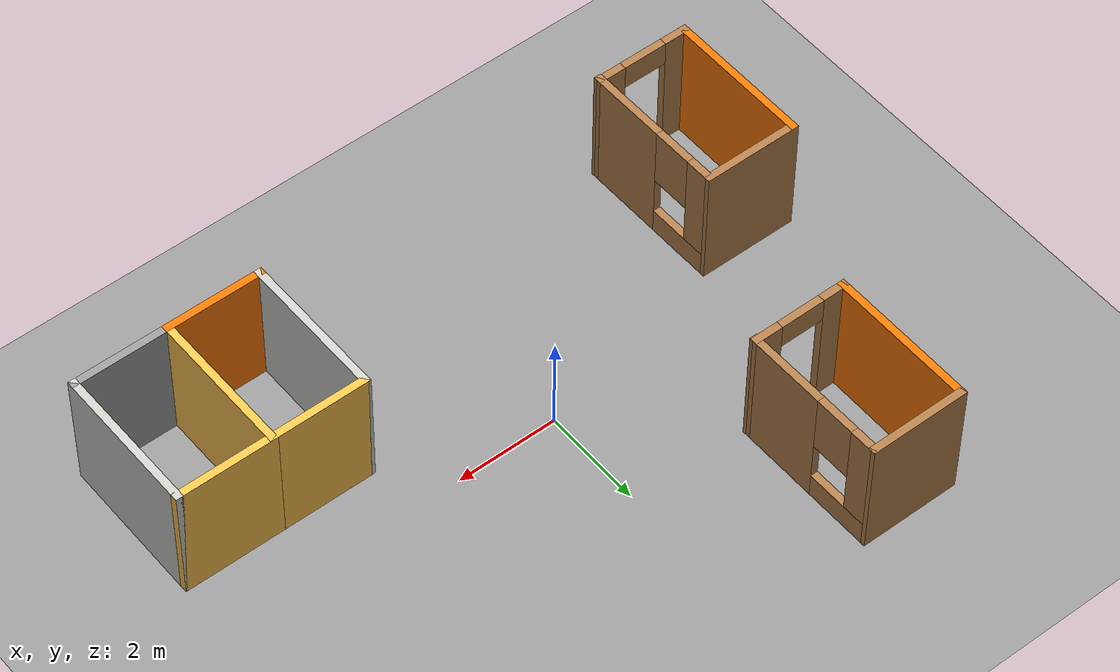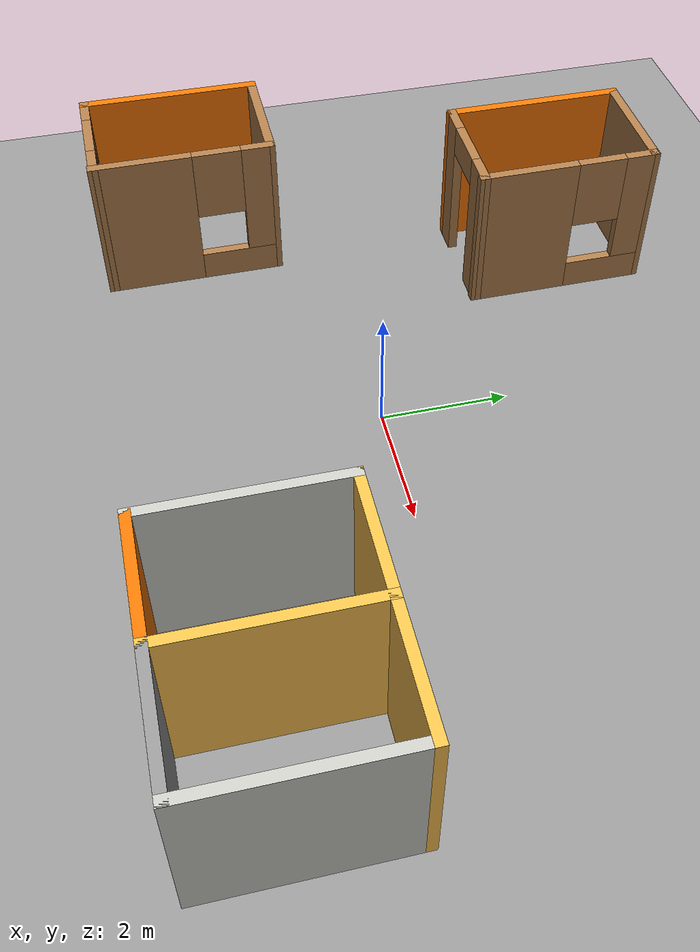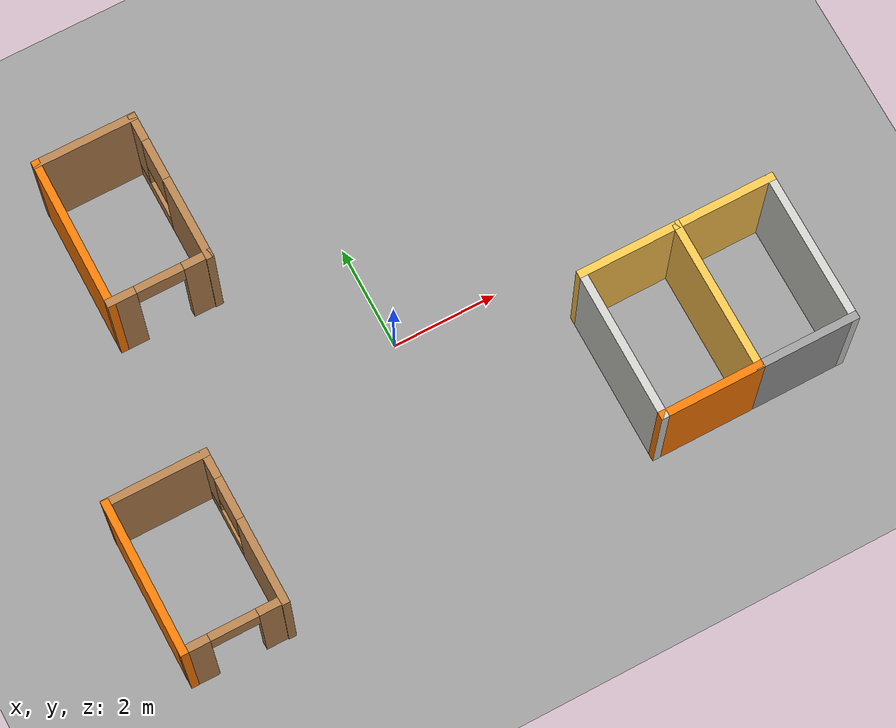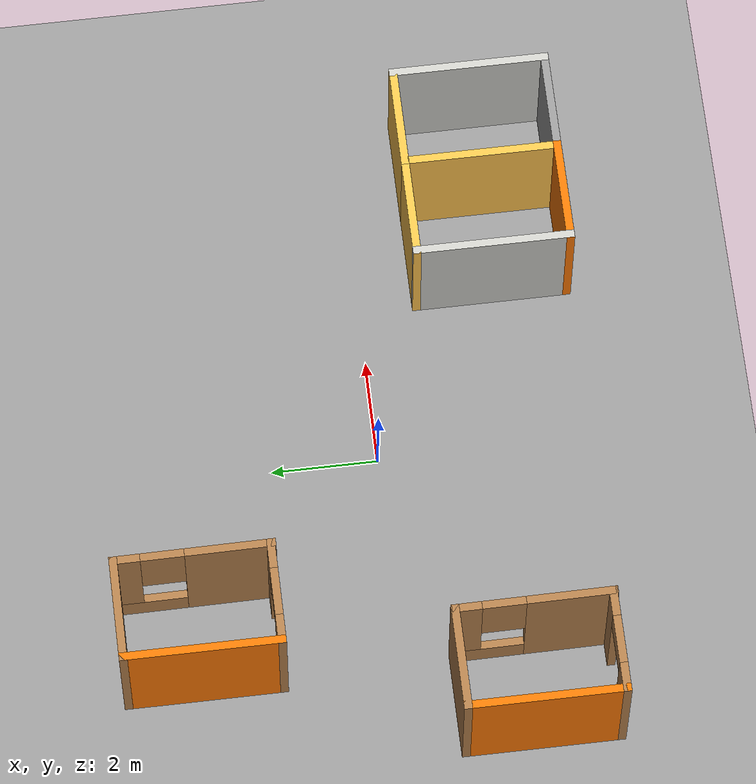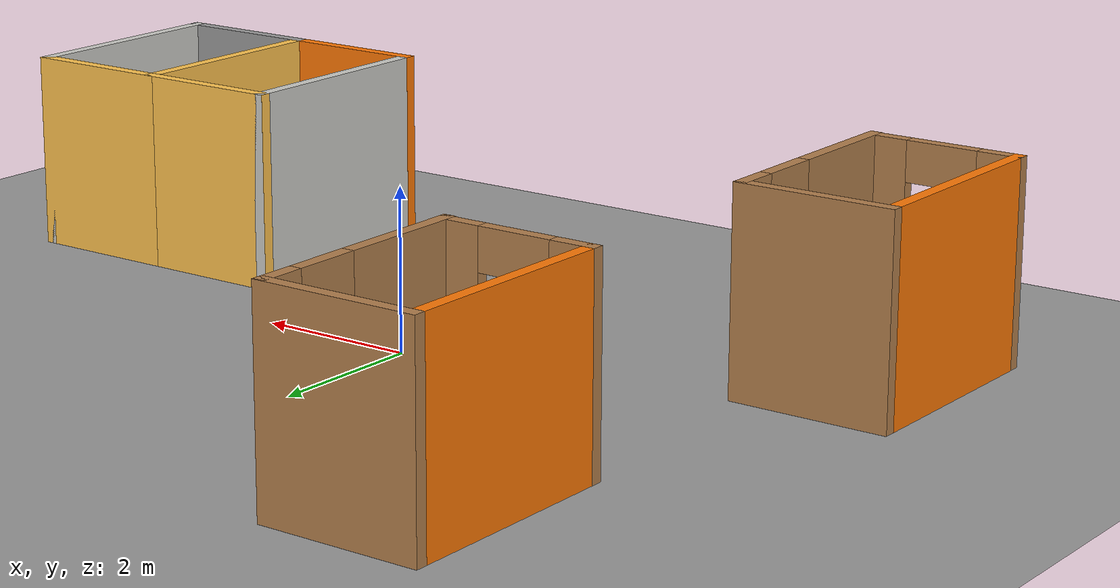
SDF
<sdf version="1.6">
 <world name="default">
  <light name="sun" type="directional">
   <pose>0 0 10 0 -0 0</pose>
   <diffuse>0.8 0.8 0.8 1</diffuse>
   <specular>0.2 0.2 0.2 1</specular>
   <attenuation>
    <range>1000</range>
    <constant>0.9</constant>
    <linear>0.01</linear>
    <quadratic>0.001</quadratic>
   </attenuation>
   <direction>0.5 0.1 -0.9</direction>
  </light>
  <scene><ambient>0.4 0.4 0.4 1</ambient><background>0.7 0.7 0.7 1</background><shadows>1</shadows></scene>
  <physics name="default_physics" default="0" type="ode">
   <max_step_size>0.01</max_step_size>
   <real_time_factor>1</real_time_factor>
   <real_time_update_rate>100</real_time_update_rate>
  </physics>
  <model name="ground_plane_0">
   <static>1</static>
   <link name="link">
    <collision name="collision">
     <geometry><plane><normal>0 0 1</normal><size>100 100</size></plane></geometry>
     <surface><friction><ode><mu>100</mu><mu2>50</mu2></ode></friction></surface>
    </collision>
    <visual name="visual">
     <cast_shadows>0</cast_shadows>
     <geometry><plane><normal>0 0 1</normal><size>100 100</size></plane></geometry>
     <material>
      <script><uri>file://media/materials/scripts/gazebo.material</uri><name>Gazebo/Grey</name></script>
     </material>
    </visual>
    <velocity_decay><linear>0</linear><angular>0</angular></velocity_decay>
   </link>
   <pose>0.497681 0 0 0 -0 0</pose>
  </model>
  <gravity>0 0 -9.8</gravity>
  <magnetic_field>6e-06 2.3e-05 -4.2e-05</magnetic_field>
  <atmosphere type="adiabatic"/>
  <spherical_coordinates>
   <surface_model>EARTH_WGS84</surface_model>
   <latitude_deg>0</latitude_deg>
   <longitude_deg>0</longitude_deg>
   <elevation>0</elevation>
   <heading_deg>0</heading_deg>
  </spherical_coordinates>
  <model name="room2">
   <pose>4.91698 -2.50339 0 0 -0 0</pose>
   <link name="Wall_10">
    <collision name="Wall_10_Collision">
     <geometry><box><size>3 0.15 2.5</size></box></geometry>
     <pose>0 0 1.25 0 -0 0</pose>
    </collision>
    <visual name="Wall_10_Visual">
     <pose>0 0 1.25 0 -0 0</pose>
     <geometry><box><size>3 0.15 2.5</size></box></geometry>
     <material>
      <script><uri>file://media/materials/scripts/gazebo.material</uri><name>Gazebo/CeilingTiled</name></script>
      <ambient>1 0.764706 0.305882 1</ambient>
     </material>
    </visual>
    <pose>-1.84994 -1.5e-05 0 0 -0 1.5708</pose>
   </link>
   <link name="Wall_11">
    <collision name="Wall_11_Collision">
     <geometry><box><size>2 0.15 2.5</size></box></geometry>
     <pose>0 0 1.25 0 -0 0</pose>
    </collision>
    <visual name="Wall_11_Visual">
     <pose>0 0 1.25 0 -0 0</pose>
     <geometry><box><size>2 0.15 2.5</size></box></geometry>
     <material>
      <script><uri>file://media/materials/scripts/gazebo.material</uri><name>Gazebo/Grey</name></script>
      <ambient>1 0.764706 0.305882 1</ambient>
     </material>
    </visual>
    <pose>-0.924979 1.425 0 0 -0 1.7e-05</pose>
   </link>
   <link name="Wall_5">
    <collision name="Wall_5_Collision">
     <geometry><box><size>2 0.15 2.5</size></box></geometry>
     <pose>0 0 1.25 0 -0 0</pose>
    </collision>
    <visual name="Wall_5_Visual">
     <pose>0 0 1.25 0 -0 0</pose>
     <geometry><box><size>2 0.15 2.5</size></box></geometry>
     <material>
      <script><uri>file://media/materials/scripts/gazebo.material</uri><name>Gazebo/Grey</name></script>
      <ambient>1 1 1 1</ambient>
     </material>
    </visual>
    <pose>0.92498 -1.42498 0 0 -0 0</pose>
   </link>
   <link name="Wall_6">
    <collision name="Wall_6_Collision">
     <geometry><box><size>3 0.15 2.5</size></box></geometry>
     <pose>0 0 1.25 0 -0 0</pose>
    </collision>
    <visual name="Wall_6_Visual">
     <pose>0 0 1.25 0 -0 0</pose>
     <geometry><box><size>3 0.15 2.5</size></box></geometry>
     <material>
      <script><uri>file://media/materials/scripts/gazebo.material</uri><name>Gazebo/CeilingTiled</name></script>
      <ambient>1 1 1 1</ambient>
     </material>
    </visual>
    <pose>1.84998 1.6e-05 0 0 -0 1.5708</pose>
   </link>
   <link name="Wall_7">
    <collision name="Wall_7_Collision">
     <geometry><box><size>2 0.15 2.5</size></box></geometry>
     <pose>0 0 1.25 0 -0 0</pose>
    </collision>
    <visual name="Wall_7_Visual">
     <pose>0 0 1.25 0 -0 0</pose>
     <geometry><box><size>2 0.15 2.5</size></box></geometry>
     <material>
      <script><uri>file://media/materials/scripts/gazebo.material</uri><name>Gazebo/Grey</name></script>
      <ambient>1 0.764706 0.305882 1</ambient>
     </material>
    </visual>
    <pose>0.92498 1.42502 0 0 -0 3.14159</pose>
   </link>
   <link name="Wall_8">
    <collision name="Wall_8_Collision">
     <geometry><box><size>3 0.15 2.5</size></box></geometry>
     <pose>0 0 1.25 0 -0 0</pose>
    </collision>
    <visual name="Wall_8_Visual">
     <pose>0 0 1.25 0 -0 0</pose>
     <geometry><box><size>3 0.15 2.5</size></box></geometry>
     <material>
      <script><uri>file://media/materials/scripts/gazebo.material</uri><name>Gazebo/Grey</name></script>
      <ambient>1 0.764706 0.305882 1</ambient>
     </material>
    </visual>
    <pose>-2e-05 1.6e-05 0 0 0 -1.5708</pose>
   </link>
   <link name="Wall_9">
    <collision name="Wall_9_Collision">
     <geometry><box><size>2 0.15 2.5</size></box></geometry>
     <pose>0 0 1.25 0 -0 0</pose>
    </collision>
    <visual name="Wall_9_Visual">
     <pose>0 0 1.25 0 -0 0</pose>
     <geometry><box><size>2 0.15 2.5</size></box></geometry>
     <material>
      <script><uri>file://media/materials/scripts/gazebo.material</uri><name>Gazebo/Grey</name></script>
      <ambient>0.996078 0.47451 0.0196078 1</ambient>
     </material>
    </visual>
    <pose>-0.924979 -1.425 0 0 0 -3.14158</pose>
   </link>
   <static>1</static>
  </model>
  <model name="room1_0">
   <link name="Wall_0">
    <pose>-0.934 0.009007 0 0 0 -1.5708</pose>
    <visual name="Wall_0_Visual">
     <pose>0 0 1.25 0 -0 0</pose>
     <geometry><box><size>3 0.15 2.5</size></box></geometry>
     <material>
      <script><uri>file://media/materials/scripts/gazebo.material</uri><name>Gazebo/Grey</name></script>
      <ambient>0.996078 0.47451 0.0196078 1</ambient>
      <diffuse>0.7 0.7 0.7 1</diffuse>
      <specular>0.01 0.01 0.01 1</specular>
      <emissive>0 0 0 1</emissive>
     </material>
    </visual>
    <collision name="Wall_0_Collision">
     <pose>0 0 1.25 0 -0 0</pose>
     <geometry><box><size>3 0.15 2.5</size></box></geometry>
     <surface>
      <friction>
       <ode><mu>1</mu><mu2>1</mu2><fdir1>0 0 0</fdir1><slip1>0</slip1><slip2>0</slip2></ode>
       <torsional>
        <coefficient>1</coefficient>
        <patch_radius>0</patch_radius>
        <surface_radius>0</surface_radius>
        <use_patch_radius>1</use_patch_radius>
        <ode><slip>0</slip></ode>
       </torsional>
      </friction>
      <bounce><restitution_coefficient>0</restitution_coefficient><threshold>1e+06</threshold></bounce>
      <contact>
       <collide_without_contact>0</collide_without_contact>
       <collide_without_contact_bitmask>1</collide_without_contact_bitmask>
       <collide_bitmask>1</collide_bitmask>
       <ode>
        <soft_cfm>0</soft_cfm>
        <soft_erp>0.2</soft_erp>
        <kp>1e+13</kp>
        <kd>1</kd>
        <max_vel>0.01</max_vel>
        <min_depth>0</min_depth>
       </ode>
       <bullet>
        <split_impulse>1</split_impulse>
        <split_impulse_penetration_threshold>-0.01</split_impulse_penetration_threshold>
        <soft_cfm>0</soft_cfm>
        <soft_erp>0.2</soft_erp>
        <kp>1e+13</kp>
        <kd>1</kd>
       </bullet>
      </contact>
     </surface>
    </collision>
   </link>
   <link name="Wall_1">
    <pose>-0.000256 -1.41599 0 0 -0 0</pose>
    <visual name="Wall_1_Visual_0">
     <pose>-0.731978 0 1.25 0 -0 0</pose>
     <geometry><box><size>0.553561 0.15 2.5</size></box></geometry>
     <material>
      <script><uri>file://media/materials/scripts/gazebo.material</uri><name>Gazebo/Wood</name></script>
      <ambient>0.921569 0.807843 0.615686 1</ambient>
      <diffuse>1 1 1 1</diffuse>
      <specular>0.2 0.2 0.2 1</specular>
      <emissive>0 0 0 1</emissive>
     </material>
    </visual>
    <visual name="Wall_1_Visual_1">
     <pose>0.726781 0 1.25 0 -0 0</pose>
     <geometry><box><size>0.563955 0.15 2.5</size></box></geometry>
     <material>
      <script><uri>file://media/materials/scripts/gazebo.material</uri><name>Gazebo/Wood</name></script>
      <ambient>0.921569 0.807843 0.615686 1</ambient>
      <diffuse>1 1 1 1</diffuse>
      <specular>0.2 0.2 0.2 1</specular>
      <emissive>0 0 0 1</emissive>
     </material>
    </visual>
    <visual name="Wall_1_Visual_2">
     <pose>-0.005197 0 2.25 0 -0 0</pose>
     <geometry><box><size>0.9 0.15 0.5</size></box></geometry>
     <material>
      <script><uri>file://media/materials/scripts/gazebo.material</uri><name>Gazebo/Wood</name></script>
      <ambient>0.921569 0.807843 0.615686 1</ambient>
      <diffuse>1 1 1 1</diffuse>
      <specular>0.2 0.2 0.2 1</specular>
      <emissive>0 0 0 1</emissive>
     </material>
    </visual>
    <collision name="Wall_1_Collision_0">
     <pose>-0.731978 0 1.25 0 -0 0</pose>
     <geometry><box><size>0.553561 0.15 2.5</size></box></geometry>
     <surface>
      <friction>
       <ode><mu>1</mu><mu2>1</mu2><fdir1>0 0 0</fdir1><slip1>0</slip1><slip2>0</slip2></ode>
       <torsional>
        <coefficient>1</coefficient>
        <patch_radius>0</patch_radius>
        <surface_radius>0</surface_radius>
        <use_patch_radius>1</use_patch_radius>
        <ode><slip>0</slip></ode>
       </torsional>
      </friction>
      <bounce><restitution_coefficient>0</restitution_coefficient><threshold>1e+06</threshold></bounce>
      <contact>
       <collide_without_contact>0</collide_without_contact>
       <collide_without_contact_bitmask>1</collide_without_contact_bitmask>
       <collide_bitmask>1</collide_bitmask>
       <ode>
        <soft_cfm>0</soft_cfm>
        <soft_erp>0.2</soft_erp>
        <kp>1e+13</kp>
        <kd>1</kd>
        <max_vel>0.01</max_vel>
        <min_depth>0</min_depth>
       </ode>
       <bullet>
        <split_impulse>1</split_impulse>
        <split_impulse_penetration_threshold>-0.01</split_impulse_penetration_threshold>
        <soft_cfm>0</soft_cfm>
        <soft_erp>0.2</soft_erp>
        <kp>1e+13</kp>
        <kd>1</kd>
       </bullet>
      </contact>
     </surface>
    </collision>
    <collision name="Wall_1_Collision_1">
     <pose>0.726781 0 1.25 0 -0 0</pose>
     <geometry><box><size>0.563955 0.15 2.5</size></box></geometry>
     <surface>
      <friction>
       <ode><mu>1</mu><mu2>1</mu2><fdir1>0 0 0</fdir1><slip1>0</slip1><slip2>0</slip2></ode>
       <torsional>
        <coefficient>1</coefficient>
        <patch_radius>0</patch_radius>
        <surface_radius>0</surface_radius>
        <use_patch_radius>1</use_patch_radius>
        <ode><slip>0</slip></ode>
       </torsional>
      </friction>
      <bounce><restitution_coefficient>0</restitution_coefficient><threshold>1e+06</threshold></bounce>
      <contact>
       <collide_without_contact>0</collide_without_contact>
       <collide_without_contact_bitmask>1</collide_without_contact_bitmask>
       <collide_bitmask>1</collide_bitmask>
       <ode>
        <soft_cfm>0</soft_cfm>
        <soft_erp>0.2</soft_erp>
        <kp>1e+13</kp>
        <kd>1</kd>
        <max_vel>0.01</max_vel>
        <min_depth>0</min_depth>
       </ode>
       <bullet>
        <split_impulse>1</split_impulse>
        <split_impulse_penetration_threshold>-0.01</split_impulse_penetration_threshold>
        <soft_cfm>0</soft_cfm>
        <soft_erp>0.2</soft_erp>
        <kp>1e+13</kp>
        <kd>1</kd>
       </bullet>
      </contact>
     </surface>
    </collision>
    <collision name="Wall_1_Collision_2">
     <pose>-0.005197 0 2.25 0 -0 0</pose>
     <geometry><box><size>0.9 0.15 0.5</size></box></geometry>
     <surface>
      <friction>
       <ode><mu>1</mu><mu2>1</mu2><fdir1>0 0 0</fdir1><slip1>0</slip1><slip2>0</slip2></ode>
       <torsional>
        <coefficient>1</coefficient>
        <patch_radius>0</patch_radius>
        <surface_radius>0</surface_radius>
        <use_patch_radius>1</use_patch_radius>
        <ode><slip>0</slip></ode>
       </torsional>
      </friction>
      <bounce><restitution_coefficient>0</restitution_coefficient><threshold>1e+06</threshold></bounce>
      <contact>
       <collide_without_contact>0</collide_without_contact>
       <collide_without_contact_bitmask>1</collide_without_contact_bitmask>
       <collide_bitmask>1</collide_bitmask>
       <ode>
        <soft_cfm>0</soft_cfm>
        <soft_erp>0.2</soft_erp>
        <kp>1e+13</kp>
        <kd>1</kd>
        <max_vel>0.01</max_vel>
        <min_depth>0</min_depth>
       </ode>
       <bullet>
        <split_impulse>1</split_impulse>
        <split_impulse_penetration_threshold>-0.01</split_impulse_penetration_threshold>
        <soft_cfm>0</soft_cfm>
        <soft_erp>0.2</soft_erp>
        <kp>1e+13</kp>
        <kd>1</kd>
       </bullet>
      </contact>
     </surface>
    </collision>
   </link>
   <link name="Wall_2">
    <pose>0.92349 -0.008483 0 0 -0 1.57781</pose>
    <inertial>
     <mass>1</mass>
     <inertia><ixx>1</ixx><ixy>0</ixy><ixz>0</ixz><iyy>1</iyy><iyz>0</iyz><izz>1</izz></inertia>
    </inertial>
    <visual name="Wall_2_Visual_0">
     <pose>-0.671271 0 1.25 0 -0 0</pose>
     <geometry><box><size>1.65753 0.15 2.5</size></box></geometry>
     <material>
      <script><uri>file://media/materials/scripts/gazebo.material</uri><name>Gazebo/Wood</name></script>
      <ambient>0.435 0.796 0.675 1</ambient>
      <diffuse>1 1 1 1</diffuse>
      <specular>0.2 0.2 0.2 1</specular>
      <emissive>1 0.3 0 1</emissive>
      <shader type="vertex"><normal_map>__default__</normal_map></shader>
     </material>
    </visual>
    <visual name="Wall_2_Visual_1">
     <pose>0.828764 0 0.25 0 -0 0</pose>
     <geometry><box><size>1.34254 0.15 0.5</size></box></geometry>
     <material>
      <script><uri>file://media/materials/scripts/gazebo.material</uri><name>Gazebo/Wood</name></script>
      <ambient>0.435 0.796 0.675 1</ambient>
      <diffuse>1 1 1 1</diffuse>
      <specular>0.2 0.2 0.2 1</specular>
      <emissive>0 0 0 1</emissive>
      <shader type="vertex"><normal_map>__default__</normal_map></shader>
     </material>
    </visual>
    <visual name="Wall_2_Visual_2">
     <pose>1.22876 0 1.5 0 -0 0</pose>
     <geometry><box><size>0.542542 0.15 2</size></box></geometry>
     <material>
      <script><uri>file://media/materials/scripts/gazebo.material</uri><name>Gazebo/Wood</name></script>
      <ambient>0.435 0.796 0.675 1</ambient>
      <diffuse>1 1 1 1</diffuse>
      <specular>0.2 0.2 0.2 1</specular>
      <emissive>0 0 0 1</emissive>
      <shader type="vertex"><normal_map>__default__</normal_map></shader>
     </material>
    </visual>
    <visual name="Wall_2_Visual_3">
     <pose>0.557493 0 1.9 0 -0 0</pose>
     <geometry><box><size>0.8 0.15 1.2</size></box></geometry>
     <material>
      <script><uri>file://media/materials/scripts/gazebo.material</uri><name>Gazebo/Wood</name></script>
      <ambient>0.435 0.796 0.675 1</ambient>
      <diffuse>1 1 1 1</diffuse>
      <specular>0.2 0.2 0.2 1</specular>
      <emissive>0 0 0 1</emissive>
      <shader type="vertex"><normal_map>__default__</normal_map></shader>
     </material>
    </visual>
    <collision name="Wall_2_Collision_0">
     <pose>-0.671271 0 1.25 0 -0 0</pose>
     <geometry><box><size>1.65753 0.15 2.5</size></box></geometry>
     <surface>
      <friction>
       <ode><mu>1</mu><mu2>1</mu2><fdir1>0 0 0</fdir1><slip1>0</slip1><slip2>0</slip2></ode>
       <torsional>
        <coefficient>1</coefficient>
        <patch_radius>0</patch_radius>
        <surface_radius>0</surface_radius>
        <use_patch_radius>1</use_patch_radius>
        <ode><slip>0</slip></ode>
       </torsional>
      </friction>
      <bounce><restitution_coefficient>0</restitution_coefficient><threshold>1e+06</threshold></bounce>
      <contact>
       <collide_without_contact>0</collide_without_contact>
       <collide_without_contact_bitmask>1</collide_without_contact_bitmask>
       <collide_bitmask>1</collide_bitmask>
       <ode>
        <soft_cfm>0</soft_cfm>
        <soft_erp>0.2</soft_erp>
        <kp>1e+13</kp>
        <kd>1</kd>
        <max_vel>0.01</max_vel>
        <min_depth>0</min_depth>
       </ode>
       <bullet>
        <split_impulse>1</split_impulse>
        <split_impulse_penetration_threshold>-0.01</split_impulse_penetration_threshold>
        <soft_cfm>0</soft_cfm>
        <soft_erp>0.2</soft_erp>
        <kp>1e+13</kp>
        <kd>1</kd>
       </bullet>
      </contact>
     </surface>
    </collision>
    <collision name="Wall_2_Collision_1">
     <pose>0.828764 0 0.25 0 -0 0</pose>
     <geometry><box><size>1.34254 0.15 0.5</size></box></geometry>
     <surface>
      <friction>
       <ode><mu>1</mu><mu2>1</mu2><fdir1>0 0 0</fdir1><slip1>0</slip1><slip2>0</slip2></ode>
       <torsional>
        <coefficient>1</coefficient>
        <patch_radius>0</patch_radius>
        <surface_radius>0</surface_radius>
        <use_patch_radius>1</use_patch_radius>
        <ode><slip>0</slip></ode>
       </torsional>
      </friction>
      <bounce><restitution_coefficient>0</restitution_coefficient><threshold>1e+06</threshold></bounce>
      <contact>
       <collide_without_contact>0</collide_without_contact>
       <collide_without_contact_bitmask>1</collide_without_contact_bitmask>
       <collide_bitmask>1</collide_bitmask>
       <ode>
        <soft_cfm>0</soft_cfm>
        <soft_erp>0.2</soft_erp>
        <kp>1e+13</kp>
        <kd>1</kd>
        <max_vel>0.01</max_vel>
        <min_depth>0</min_depth>
       </ode>
       <bullet>
        <split_impulse>1</split_impulse>
        <split_impulse_penetration_threshold>-0.01</split_impulse_penetration_threshold>
        <soft_cfm>0</soft_cfm>
        <soft_erp>0.2</soft_erp>
        <kp>1e+13</kp>
        <kd>1</kd>
       </bullet>
      </contact>
     </surface>
    </collision>
    <collision name="Wall_2_Collision_2">
     <pose>1.22876 0 1.5 0 -0 0</pose>
     <geometry><box><size>0.542542 0.15 2</size></box></geometry>
     <surface>
      <friction>
       <ode><mu>1</mu><mu2>1</mu2><fdir1>0 0 0</fdir1><slip1>0</slip1><slip2>0</slip2></ode>
       <torsional>
        <coefficient>1</coefficient>
        <patch_radius>0</patch_radius>
        <surface_radius>0</surface_radius>
        <use_patch_radius>1</use_patch_radius>
        <ode><slip>0</slip></ode>
       </torsional>
      </friction>
      <bounce><restitution_coefficient>0</restitution_coefficient><threshold>1e+06</threshold></bounce>
      <contact>
       <collide_without_contact>0</collide_without_contact>
       <collide_without_contact_bitmask>1</collide_without_contact_bitmask>
       <collide_bitmask>1</collide_bitmask>
       <ode>
        <soft_cfm>0</soft_cfm>
        <soft_erp>0.2</soft_erp>
        <kp>1e+13</kp>
        <kd>1</kd>
        <max_vel>0.01</max_vel>
        <min_depth>0</min_depth>
       </ode>
       <bullet>
        <split_impulse>1</split_impulse>
        <split_impulse_penetration_threshold>-0.01</split_impulse_penetration_threshold>
        <soft_cfm>0</soft_cfm>
        <soft_erp>0.2</soft_erp>
        <kp>1e+13</kp>
        <kd>1</kd>
       </bullet>
      </contact>
     </surface>
    </collision>
    <collision name="Wall_2_Collision_3">
     <pose>0.557493 0 1.9 0 -0 0</pose>
     <geometry><box><size>0.8 0.15 1.2</size></box></geometry>
     <surface>
      <friction>
       <ode><mu>1</mu><mu2>1</mu2><fdir1>0 0 0</fdir1><slip1>0</slip1><slip2>0</slip2></ode>
       <torsional>
        <coefficient>1</coefficient>
        <patch_radius>0</patch_radius>
        <surface_radius>0</surface_radius>
        <use_patch_radius>1</use_patch_radius>
        <ode><slip>0</slip></ode>
       </torsional>
      </friction>
      <bounce><restitution_coefficient>0</restitution_coefficient><threshold>1e+06</threshold></bounce>
      <contact>
       <collide_without_contact>0</collide_without_contact>
       <collide_without_contact_bitmask>1</collide_without_contact_bitmask>
       <collide_bitmask>1</collide_bitmask>
       <ode>
        <soft_cfm>0</soft_cfm>
        <soft_erp>0.2</soft_erp>
        <kp>1e+13</kp>
        <kd>1</kd>
        <max_vel>0.01</max_vel>
        <min_depth>0</min_depth>
       </ode>
       <bullet>
        <split_impulse>1</split_impulse>
        <split_impulse_penetration_threshold>-0.01</split_impulse_penetration_threshold>
        <soft_cfm>0</soft_cfm>
        <soft_erp>0.2</soft_erp>
        <kp>1e+13</kp>
        <kd>1</kd>
       </bullet>
      </contact>
     </surface>
    </collision>
   </link>
   <link name="Wall_3">
    <pose>-0.010256 1.43401 0 0 -0 3.14159</pose>
    <visual name="Wall_3_Visual">
     <pose>0 0 1.25 0 -0 0</pose>
     <geometry><box><size>1.99749 0.15 2.5</size></box></geometry>
     <material>
      <script><uri>file://media/materials/scripts/gazebo.material</uri><name>Gazebo/Wood</name></script>
      <ambient>0.996078 0.47451 0.0196078 1</ambient>
      <diffuse>1 1 1 1</diffuse>
      <specular>0.2 0.2 0.2 1</specular>
      <emissive>0 0 0 1</emissive>
     </material>
    </visual>
    <collision name="Wall_3_Collision">
     <pose>0 0 1.25 0 -0 0</pose>
     <geometry><box><size>1.99749 0.15 2.5</size></box></geometry>
     <surface>
      <friction>
       <ode><mu>1</mu><mu2>1</mu2><fdir1>0 0 0</fdir1><slip1>0</slip1><slip2>0</slip2></ode>
       <torsional>
        <coefficient>1</coefficient>
        <patch_radius>0</patch_radius>
        <surface_radius>0</surface_radius>
        <use_patch_radius>1</use_patch_radius>
        <ode><slip>0</slip></ode>
       </torsional>
      </friction>
      <bounce><restitution_coefficient>0</restitution_coefficient><threshold>1e+06</threshold></bounce>
      <contact>
       <collide_without_contact>0</collide_without_contact>
       <collide_without_contact_bitmask>1</collide_without_contact_bitmask>
       <collide_bitmask>1</collide_bitmask>
       <ode>
        <soft_cfm>0</soft_cfm>
        <soft_erp>0.2</soft_erp>
        <kp>1e+13</kp>
        <kd>1</kd>
        <max_vel>0.01</max_vel>
        <min_depth>0</min_depth>
       </ode>
       <bullet>
        <split_impulse>1</split_impulse>
        <split_impulse_penetration_threshold>-0.01</split_impulse_penetration_threshold>
        <soft_cfm>0</soft_cfm>
        <soft_erp>0.2</soft_erp>
        <kp>1e+13</kp>
        <kd>1</kd>
       </bullet>
      </contact>
     </surface>
    </collision>
   </link>
   <static>1</static>
   <pose>-4.956 -2.33401 0 0 -0 0</pose>
  </model>
  <model name="room1_0_clone">
   <link name="Wall_0">
    <pose>-0.934 0.009007 0 0 0 -1.5708</pose>
    <visual name="Wall_0_Visual">
     <pose>0 0 1.25 0 -0 0</pose>
     <geometry><box><size>3 0.15 2.5</size></box></geometry>
     <material>
      <script><uri>file://media/materials/scripts/gazebo.material</uri><name>Gazebo/Grey</name></script>
      <ambient>0.996078 0.47451 0.0196078 1</ambient>
      <diffuse>0.7 0.7 0.7 1</diffuse>
      <specular>0.01 0.01 0.01 1</specular>
      <emissive>0 0 0 1</emissive>
     </material>
    </visual>
    <collision name="Wall_0_Collision">
     <pose>0 0 1.25 0 -0 0</pose>
     <geometry><box><size>3 0.15 2.5</size></box></geometry>
     <surface>
      <friction>
       <ode><mu>1</mu><mu2>1</mu2><fdir1>0 0 0</fdir1><slip1>0</slip1><slip2>0</slip2></ode>
       <torsional>
        <coefficient>1</coefficient>
        <patch_radius>0</patch_radius>
        <surface_radius>0</surface_radius>
        <use_patch_radius>1</use_patch_radius>
        <ode><slip>0</slip></ode>
       </torsional>
      </friction>
      <bounce><restitution_coefficient>0</restitution_coefficient><threshold>1e+06</threshold></bounce>
      <contact>
       <collide_without_contact>0</collide_without_contact>
       <collide_without_contact_bitmask>1</collide_without_contact_bitmask>
       <collide_bitmask>1</collide_bitmask>
       <ode>
        <soft_cfm>0</soft_cfm>
        <soft_erp>0.2</soft_erp>
        <kp>1e+13</kp>
        <kd>1</kd>
        <max_vel>0.01</max_vel>
        <min_depth>0</min_depth>
       </ode>
       <bullet>
        <split_impulse>1</split_impulse>
        <split_impulse_penetration_threshold>-0.01</split_impulse_penetration_threshold>
        <soft_cfm>0</soft_cfm>
        <soft_erp>0.2</soft_erp>
        <kp>1e+13</kp>
        <kd>1</kd>
       </bullet>
      </contact>
     </surface>
    </collision>
   </link>
   <link name="Wall_1">
    <pose>-0.000256 -1.41599 0 0 -0 0</pose>
    <visual name="Wall_1_Visual_0">
     <pose>-0.731978 0 1.25 0 -0 0</pose>
     <geometry><box><size>0.553561 0.15 2.5</size></box></geometry>
     <material>
      <script><uri>file://media/materials/scripts/gazebo.material</uri><name>Gazebo/Wood</name></script>
      <ambient>0.921569 0.807843 0.615686 1</ambient>
      <diffuse>1 1 1 1</diffuse>
      <specular>0.2 0.2 0.2 1</specular>
      <emissive>0 0 0 1</emissive>
     </material>
    </visual>
    <visual name="Wall_1_Visual_1">
     <pose>0.726781 0 1.25 0 -0 0</pose>
     <geometry><box><size>0.563955 0.15 2.5</size></box></geometry>
     <material>
      <script><uri>file://media/materials/scripts/gazebo.material</uri><name>Gazebo/Wood</name></script>
      <ambient>0.921569 0.807843 0.615686 1</ambient>
      <diffuse>1 1 1 1</diffuse>
      <specular>0.2 0.2 0.2 1</specular>
      <emissive>0 0 0 1</emissive>
     </material>
    </visual>
    <visual name="Wall_1_Visual_2">
     <pose>-0.005197 0 2.25 0 -0 0</pose>
     <geometry><box><size>0.9 0.15 0.5</size></box></geometry>
     <material>
      <script><uri>file://media/materials/scripts/gazebo.material</uri><name>Gazebo/Wood</name></script>
      <ambient>0.921569 0.807843 0.615686 1</ambient>
      <diffuse>1 1 1 1</diffuse>
      <specular>0.2 0.2 0.2 1</specular>
      <emissive>0 0 0 1</emissive>
     </material>
    </visual>
    <collision name="Wall_1_Collision_0">
     <pose>-0.731978 0 1.25 0 -0 0</pose>
     <geometry><box><size>0.553561 0.15 2.5</size></box></geometry>
     <surface>
      <friction>
       <ode><mu>1</mu><mu2>1</mu2><fdir1>0 0 0</fdir1><slip1>0</slip1><slip2>0</slip2></ode>
       <torsional>
        <coefficient>1</coefficient>
        <patch_radius>0</patch_radius>
        <surface_radius>0</surface_radius>
        <use_patch_radius>1</use_patch_radius>
        <ode><slip>0</slip></ode>
       </torsional>
      </friction>
      <bounce><restitution_coefficient>0</restitution_coefficient><threshold>1e+06</threshold></bounce>
      <contact>
       <collide_without_contact>0</collide_without_contact>
       <collide_without_contact_bitmask>1</collide_without_contact_bitmask>
       <collide_bitmask>1</collide_bitmask>
       <ode>
        <soft_cfm>0</soft_cfm>
        <soft_erp>0.2</soft_erp>
        <kp>1e+13</kp>
        <kd>1</kd>
        <max_vel>0.01</max_vel>
        <min_depth>0</min_depth>
       </ode>
       <bullet>
        <split_impulse>1</split_impulse>
        <split_impulse_penetration_threshold>-0.01</split_impulse_penetration_threshold>
        <soft_cfm>0</soft_cfm>
        <soft_erp>0.2</soft_erp>
        <kp>1e+13</kp>
        <kd>1</kd>
       </bullet>
      </contact>
     </surface>
    </collision>
    <collision name="Wall_1_Collision_1">
     <pose>0.726781 0 1.25 0 -0 0</pose>
     <geometry><box><size>0.563955 0.15 2.5</size></box></geometry>
     <surface>
      <friction>
       <ode><mu>1</mu><mu2>1</mu2><fdir1>0 0 0</fdir1><slip1>0</slip1><slip2>0</slip2></ode>
       <torsional>
        <coefficient>1</coefficient>
        <patch_radius>0</patch_radius>
        <surface_radius>0</surface_radius>
        <use_patch_radius>1</use_patch_radius>
        <ode><slip>0</slip></ode>
       </torsional>
      </friction>
      <bounce><restitution_coefficient>0</restitution_coefficient><threshold>1e+06</threshold></bounce>
      <contact>
       <collide_without_contact>0</collide_without_contact>
       <collide_without_contact_bitmask>1</collide_without_contact_bitmask>
       <collide_bitmask>1</collide_bitmask>
       <ode>
        <soft_cfm>0</soft_cfm>
        <soft_erp>0.2</soft_erp>
        <kp>1e+13</kp>
        <kd>1</kd>
        <max_vel>0.01</max_vel>
        <min_depth>0</min_depth>
       </ode>
       <bullet>
        <split_impulse>1</split_impulse>
        <split_impulse_penetration_threshold>-0.01</split_impulse_penetration_threshold>
        <soft_cfm>0</soft_cfm>
        <soft_erp>0.2</soft_erp>
        <kp>1e+13</kp>
        <kd>1</kd>
       </bullet>
      </contact>
     </surface>
    </collision>
    <collision name="Wall_1_Collision_2">
     <pose>-0.005197 0 2.25 0 -0 0</pose>
     <geometry><box><size>0.9 0.15 0.5</size></box></geometry>
     <surface>
      <friction>
       <ode><mu>1</mu><mu2>1</mu2><fdir1>0 0 0</fdir1><slip1>0</slip1><slip2>0</slip2></ode>
       <torsional>
        <coefficient>1</coefficient>
        <patch_radius>0</patch_radius>
        <surface_radius>0</surface_radius>
        <use_patch_radius>1</use_patch_radius>
        <ode><slip>0</slip></ode>
       </torsional>
      </friction>
      <bounce><restitution_coefficient>0</restitution_coefficient><threshold>1e+06</threshold></bounce>
      <contact>
       <collide_without_contact>0</collide_without_contact>
       <collide_without_contact_bitmask>1</collide_without_contact_bitmask>
       <collide_bitmask>1</collide_bitmask>
       <ode>
        <soft_cfm>0</soft_cfm>
        <soft_erp>0.2</soft_erp>
        <kp>1e+13</kp>
        <kd>1</kd>
        <max_vel>0.01</max_vel>
        <min_depth>0</min_depth>
       </ode>
       <bullet>
        <split_impulse>1</split_impulse>
        <split_impulse_penetration_threshold>-0.01</split_impulse_penetration_threshold>
        <soft_cfm>0</soft_cfm>
        <soft_erp>0.2</soft_erp>
        <kp>1e+13</kp>
        <kd>1</kd>
       </bullet>
      </contact>
     </surface>
    </collision>
   </link>
   <link name="Wall_2">
    <pose>0.92349 -0.008483 0 0 -0 1.57781</pose>
    <inertial>
     <mass>1</mass>
     <inertia><ixx>1</ixx><ixy>0</ixy><ixz>0</ixz><iyy>1</iyy><iyz>0</iyz><izz>1</izz></inertia>
    </inertial>
    <visual name="Wall_2_Visual_0">
     <pose>-0.671271 0 1.25 0 -0 0</pose>
     <geometry><box><size>1.65753 0.15 2.5</size></box></geometry>
     <material>
      <script><uri>file://media/materials/scripts/gazebo.material</uri><name>Gazebo/Wood</name></script>
      <ambient>0.435 0.796 0.675 1</ambient>
      <diffuse>1 1 1 1</diffuse>
      <specular>0.2 0.2 0.2 1</specular>
      <emissive>1 0.3 0 1</emissive>
      <shader type="vertex"><normal_map>__default__</normal_map></shader>
     </material>
    </visual>
    <visual name="Wall_2_Visual_1">
     <pose>0.828764 0 0.25 0 -0 0</pose>
     <geometry><box><size>1.34254 0.15 0.5</size></box></geometry>
     <material>
      <script><uri>file://media/materials/scripts/gazebo.material</uri><name>Gazebo/Wood</name></script>
      <ambient>0.435 0.796 0.675 1</ambient>
      <diffuse>1 1 1 1</diffuse>
      <specular>0.2 0.2 0.2 1</specular>
      <emissive>0 0 0 1</emissive>
      <shader type="vertex"><normal_map>__default__</normal_map></shader>
     </material>
    </visual>
    <visual name="Wall_2_Visual_2">
     <pose>1.22876 0 1.5 0 -0 0</pose>
     <geometry><box><size>0.542542 0.15 2</size></box></geometry>
     <material>
      <script><uri>file://media/materials/scripts/gazebo.material</uri><name>Gazebo/Wood</name></script>
      <ambient>0.435 0.796 0.675 1</ambient>
      <diffuse>1 1 1 1</diffuse>
      <specular>0.2 0.2 0.2 1</specular>
      <emissive>0 0 0 1</emissive>
      <shader type="vertex"><normal_map>__default__</normal_map></shader>
     </material>
    </visual>
    <visual name="Wall_2_Visual_3">
     <pose>0.557493 0 1.9 0 -0 0</pose>
     <geometry><box><size>0.8 0.15 1.2</size></box></geometry>
     <material>
      <script><uri>file://media/materials/scripts/gazebo.material</uri><name>Gazebo/Wood</name></script>
      <ambient>0.435 0.796 0.675 1</ambient>
      <diffuse>1 1 1 1</diffuse>
      <specular>0.2 0.2 0.2 1</specular>
      <emissive>0 0 0 1</emissive>
      <shader type="vertex"><normal_map>__default__</normal_map></shader>
     </material>
    </visual>
    <collision name="Wall_2_Collision_0">
     <pose>-0.671271 0 1.25 0 -0 0</pose>
     <geometry><box><size>1.65753 0.15 2.5</size></box></geometry>
     <surface>
      <friction>
       <ode><mu>1</mu><mu2>1</mu2><fdir1>0 0 0</fdir1><slip1>0</slip1><slip2>0</slip2></ode>
       <torsional>
        <coefficient>1</coefficient>
        <patch_radius>0</patch_radius>
        <surface_radius>0</surface_radius>
        <use_patch_radius>1</use_patch_radius>
        <ode><slip>0</slip></ode>
       </torsional>
      </friction>
      <bounce><restitution_coefficient>0</restitution_coefficient><threshold>1e+06</threshold></bounce>
      <contact>
       <collide_without_contact>0</collide_without_contact>
       <collide_without_contact_bitmask>1</collide_without_contact_bitmask>
       <collide_bitmask>1</collide_bitmask>
       <ode>
        <soft_cfm>0</soft_cfm>
        <soft_erp>0.2</soft_erp>
        <kp>1e+13</kp>
        <kd>1</kd>
        <max_vel>0.01</max_vel>
        <min_depth>0</min_depth>
       </ode>
       <bullet>
        <split_impulse>1</split_impulse>
        <split_impulse_penetration_threshold>-0.01</split_impulse_penetration_threshold>
        <soft_cfm>0</soft_cfm>
        <soft_erp>0.2</soft_erp>
        <kp>1e+13</kp>
        <kd>1</kd>
       </bullet>
      </contact>
     </surface>
    </collision>
    <collision name="Wall_2_Collision_1">
     <pose>0.828764 0 0.25 0 -0 0</pose>
     <geometry><box><size>1.34254 0.15 0.5</size></box></geometry>
     <surface>
      <friction>
       <ode><mu>1</mu><mu2>1</mu2><fdir1>0 0 0</fdir1><slip1>0</slip1><slip2>0</slip2></ode>
       <torsional>
        <coefficient>1</coefficient>
        <patch_radius>0</patch_radius>
        <surface_radius>0</surface_radius>
        <use_patch_radius>1</use_patch_radius>
        <ode><slip>0</slip></ode>
       </torsional>
      </friction>
      <bounce><restitution_coefficient>0</restitution_coefficient><threshold>1e+06</threshold></bounce>
      <contact>
       <collide_without_contact>0</collide_without_contact>
       <collide_without_contact_bitmask>1</collide_without_contact_bitmask>
       <collide_bitmask>1</collide_bitmask>
       <ode>
        <soft_cfm>0</soft_cfm>
        <soft_erp>0.2</soft_erp>
        <kp>1e+13</kp>
        <kd>1</kd>
        <max_vel>0.01</max_vel>
        <min_depth>0</min_depth>
       </ode>
       <bullet>
        <split_impulse>1</split_impulse>
        <split_impulse_penetration_threshold>-0.01</split_impulse_penetration_threshold>
        <soft_cfm>0</soft_cfm>
        <soft_erp>0.2</soft_erp>
        <kp>1e+13</kp>
        <kd>1</kd>
       </bullet>
      </contact>
     </surface>
    </collision>
    <collision name="Wall_2_Collision_2">
     <pose>1.22876 0 1.5 0 -0 0</pose>
     <geometry><box><size>0.542542 0.15 2</size></box></geometry>
     <surface>
      <friction>
       <ode><mu>1</mu><mu2>1</mu2><fdir1>0 0 0</fdir1><slip1>0</slip1><slip2>0</slip2></ode>
       <torsional>
        <coefficient>1</coefficient>
        <patch_radius>0</patch_radius>
        <surface_radius>0</surface_radius>
        <use_patch_radius>1</use_patch_radius>
        <ode><slip>0</slip></ode>
       </torsional>
      </friction>
      <bounce><restitution_coefficient>0</restitution_coefficient><threshold>1e+06</threshold></bounce>
      <contact>
       <collide_without_contact>0</collide_without_contact>
       <collide_without_contact_bitmask>1</collide_without_contact_bitmask>
       <collide_bitmask>1</collide_bitmask>
       <ode>
        <soft_cfm>0</soft_cfm>
        <soft_erp>0.2</soft_erp>
        <kp>1e+13</kp>
        <kd>1</kd>
        <max_vel>0.01</max_vel>
        <min_depth>0</min_depth>
       </ode>
       <bullet>
        <split_impulse>1</split_impulse>
        <split_impulse_penetration_threshold>-0.01</split_impulse_penetration_threshold>
        <soft_cfm>0</soft_cfm>
        <soft_erp>0.2</soft_erp>
        <kp>1e+13</kp>
        <kd>1</kd>
       </bullet>
      </contact>
     </surface>
    </collision>
    <collision name="Wall_2_Collision_3">
     <pose>0.557493 0 1.9 0 -0 0</pose>
     <geometry><box><size>0.8 0.15 1.2</size></box></geometry>
     <surface>
      <friction>
       <ode><mu>1</mu><mu2>1</mu2><fdir1>0 0 0</fdir1><slip1>0</slip1><slip2>0</slip2></ode>
       <torsional>
        <coefficient>1</coefficient>
        <patch_radius>0</patch_radius>
        <surface_radius>0</surface_radius>
        <use_patch_radius>1</use_patch_radius>
        <ode><slip>0</slip></ode>
       </torsional>
      </friction>
      <bounce><restitution_coefficient>0</restitution_coefficient><threshold>1e+06</threshold></bounce>
      <contact>
       <collide_without_contact>0</collide_without_contact>
       <collide_without_contact_bitmask>1</collide_without_contact_bitmask>
       <collide_bitmask>1</collide_bitmask>
       <ode>
        <soft_cfm>0</soft_cfm>
        <soft_erp>0.2</soft_erp>
        <kp>1e+13</kp>
        <kd>1</kd>
        <max_vel>0.01</max_vel>
        <min_depth>0</min_depth>
       </ode>
       <bullet>
        <split_impulse>1</split_impulse>
        <split_impulse_penetration_threshold>-0.01</split_impulse_penetration_threshold>
        <soft_cfm>0</soft_cfm>
        <soft_erp>0.2</soft_erp>
        <kp>1e+13</kp>
        <kd>1</kd>
       </bullet>
      </contact>
     </surface>
    </collision>
   </link>
   <link name="Wall_3">
    <pose>-0.010256 1.43401 0 0 -0 3.14159</pose>
    <visual name="Wall_3_Visual">
     <pose>0 0 1.25 0 -0 0</pose>
     <geometry><box><size>1.99749 0.15 2.5</size></box></geometry>
     <material>
      <script><uri>file://media/materials/scripts/gazebo.material</uri><name>Gazebo/Wood</name></script>
      <ambient>0.996078 0.47451 0.0196078 1</ambient>
      <diffuse>1 1 1 1</diffuse>
      <specular>0.2 0.2 0.2 1</specular>
      <emissive>0 0 0 1</emissive>
     </material>
    </visual>
    <collision name="Wall_3_Collision">
     <pose>0 0 1.25 0 -0 0</pose>
     <geometry><box><size>1.99749 0.15 2.5</size></box></geometry>
     <surface>
      <friction>
       <ode><mu>1</mu><mu2>1</mu2><fdir1>0 0 0</fdir1><slip1>0</slip1><slip2>0</slip2></ode>
       <torsional>
        <coefficient>1</coefficient>
        <patch_radius>0</patch_radius>
        <surface_radius>0</surface_radius>
        <use_patch_radius>1</use_patch_radius>
        <ode><slip>0</slip></ode>
       </torsional>
      </friction>
      <bounce><restitution_coefficient>0</restitution_coefficient><threshold>1e+06</threshold></bounce>
      <contact>
       <collide_without_contact>0</collide_without_contact>
       <collide_without_contact_bitmask>1</collide_without_contact_bitmask>
       <collide_bitmask>1</collide_bitmask>
       <ode>
        <soft_cfm>0</soft_cfm>
        <soft_erp>0.2</soft_erp>
        <kp>1e+13</kp>
        <kd>1</kd>
        <max_vel>0.01</max_vel>
        <min_depth>0</min_depth>
       </ode>
       <bullet>
        <split_impulse>1</split_impulse>
        <split_impulse_penetration_threshold>-0.01</split_impulse_penetration_threshold>
        <soft_cfm>0</soft_cfm>
        <soft_erp>0.2</soft_erp>
        <kp>1e+13</kp>
        <kd>1</kd>
       </bullet>
      </contact>
     </surface>
    </collision>
   </link>
   <static>1</static>
   <pose>-3.32821 3.64649 0 0 -0 0</pose>
  </model>
 </world>
</sdf>
